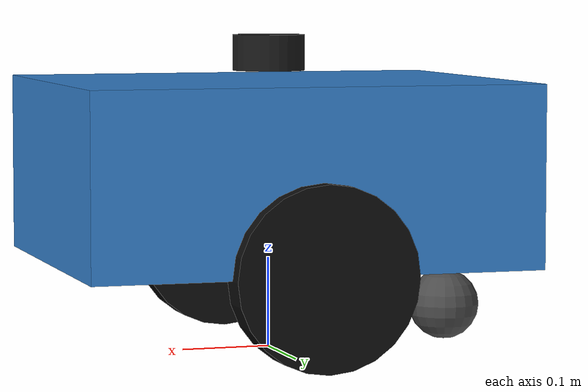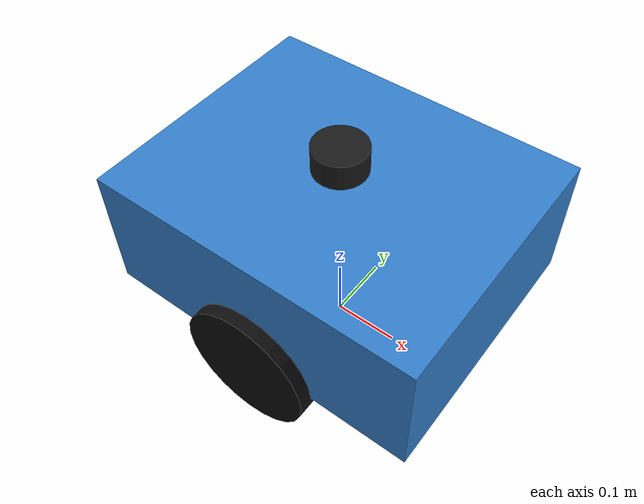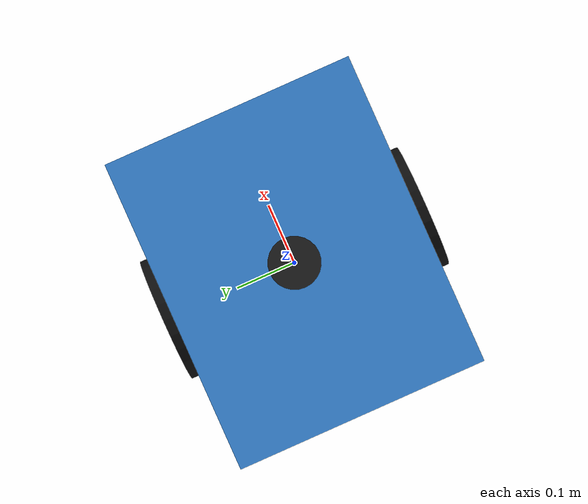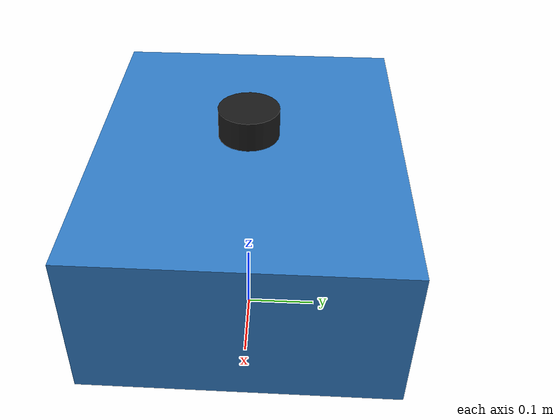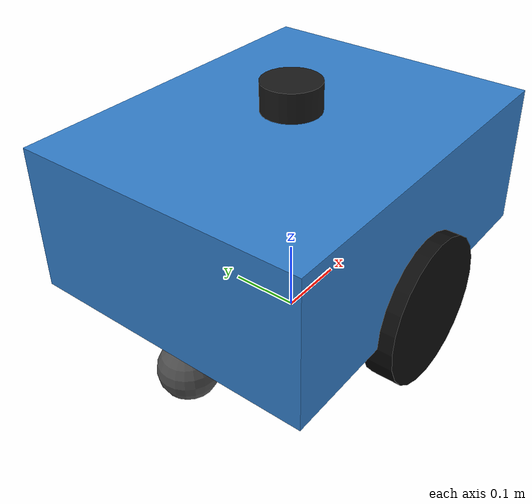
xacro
<?xml version="1.0"?>
<robot name="diff_bot" xmlns:xacro="http://www.ros.org/wiki/xacro">

  <!-- base_footprint at floor level (navigation root). -->
  <link name="base_footprint"/>

  <joint name="base_footprint_to_base_link" type="fixed">
    <parent link="base_footprint"/>
    <child link="base_link"/>
    <origin xyz="0 0 0.200000" rpy="0 0 0"/>
  </joint>

  <link name="base_link">
    <visual>
      <geometry><box size="0.500000 0.400000 0.200000"/></geometry>
      <material name="chassis_color"><color rgba="0.2 0.5 0.8 1"/></material>
    </visual>
    <collision>
      <geometry><box size="0.500000 0.400000 0.200000"/></geometry>
    </collision>
    <inertial>
      <mass value="10.000000"/>
      <inertia ixx="0.166667" iyy="0.241667" izz="0.341667"
               ixy="0" ixz="0" iyz="0"/>
    </inertial>
  </link>

  <!-- Wheels -->
  <link name="left_wheel">
    <visual>
      <geometry><cylinder radius="0.100000" length="0.040000"/></geometry>
      <material name="wheel_color"><color rgba="0.05 0.05 0.05 1"/></material>
      <origin rpy="1.5708 0 0"/>
    </visual>
    <collision>
      <geometry><cylinder radius="0.100000" length="0.040000"/></geometry>
      <origin rpy="1.5708 0 0"/>
    </collision>
    <inertial>
      <mass value="0.314159"/>
      <inertia ixx="0.000827" iyy="0.000827" izz="0.001571"
               ixy="0" ixz="0" iyz="0"/>
    </inertial>
  </link>
  <joint name="left_wheel_joint" type="continuous">
    <parent link="base_link"/>
    <child link="left_wheel"/>
    <origin xyz="0 0.200000 -0.100000" rpy="0 0 0"/>
    <axis xyz="0 1 0"/>
  </joint>

  <link name="right_wheel">
    <visual>
      <geometry><cylinder radius="0.100000" length="0.040000"/></geometry>
      <material name="wheel_color"><color rgba="0.05 0.05 0.05 1"/></material>
      <origin rpy="1.5708 0 0"/>
    </visual>
    <collision>
      <geometry><cylinder radius="0.100000" length="0.040000"/></geometry>
      <origin rpy="1.5708 0 0"/>
    </collision>
    <inertial>
      <mass value="0.314159"/>
      <inertia ixx="0.000827" iyy="0.000827" izz="0.001571"
               ixy="0" ixz="0" iyz="0"/>
    </inertial>
  </link>
  <joint name="right_wheel_joint" type="continuous">
    <parent link="base_link"/>
    <child link="right_wheel"/>
    <origin xyz="0 -0.200000 -0.100000" rpy="0 0 0"/>
    <axis xyz="0 1 0"/>
  </joint>

  <!-- Passive caster at the back -->
  <link name="caster_wheel">
    <visual>
      <geometry><sphere radius="0.040000"/></geometry>
      <material name="caster_color"><color rgba="0.3 0.3 0.3 1"/></material>
    </visual>
    <collision>
      <geometry><sphere radius="0.040000"/></geometry>
    </collision>
    <inertial>
      <mass value="0.067021"/>
      <inertia ixx="0.000043" iyy="0.000043" izz="0.000043"
               ixy="0" ixz="0" iyz="0"/>
    </inertial>
  </link>
  <joint name="caster_joint" type="fixed">
    <parent link="base_link"/>
    <child link="caster_wheel"/>
    <origin xyz="-0.210000 0 -0.160000" rpy="0 0 0"/>
  </joint>

  <!-- Lidar mount -->
  <link name="lidar_link">
    <visual>
      <geometry><cylinder radius="0.04" length="0.04"/></geometry>
      <material name="lidar_color"><color rgba="0.1 0.1 0.1 1"/></material>
    </visual>
    <inertial>
      <mass value="0.05"/>
      <inertia ixx="1e-5" iyy="1e-5" izz="1e-5" ixy="0" ixz="0" iyz="0"/>
    </inertial>
  </link>
  <joint name="lidar_joint" type="fixed">
    <parent link="base_link"/>
    <child link="lidar_link"/>
    <origin xyz="0 0 0.130000" rpy="0 0 0"/>
  </joint>

  <!-- IMU at chassis center -->
  <link name="imu_link">
    <inertial>
      <mass value="0.01"/>
      <inertia ixx="1e-6" iyy="1e-6" izz="1e-6" ixy="0" ixz="0" iyz="0"/>
    </inertial>
  </link>
  <joint name="imu_joint" type="fixed">
    <parent link="base_link"/>
    <child link="imu_link"/>
    <origin xyz="0 0 0" rpy="0 0 0"/>
  </joint>

  <!-- Gazebo materials + plugins -->
  <gazebo reference="base_link"><material>Gazebo/Blue</material></gazebo>
  <gazebo reference="left_wheel"><material>Gazebo/Black</material></gazebo>
  <gazebo reference="right_wheel"><material>Gazebo/Black</material></gazebo>
  <gazebo reference="caster_wheel"><material>Gazebo/Grey</material></gazebo>

  <gazebo>
    <plugin filename="gz-sim-diff-drive-system" name="gz::sim::systems::DiffDrive">
      <left_joint>left_wheel_joint</left_joint>
      <right_joint>right_wheel_joint</right_joint>
      <wheel_separation>0.400000</wheel_separation>
      <wheel_radius>0.100000</wheel_radius>
      <odom_publish_frequency>30</odom_publish_frequency>
      <topic>cmd_vel</topic>
      <odom_topic>odom</odom_topic>
      <tf_topic>tf</tf_topic>
      <frame_id>odom</frame_id>
      <child_frame_id>base_link</child_frame_id>
    </plugin>
    <plugin filename="gz-sim-joint-state-publisher-system" name="gz::sim::systems::JointStatePublisher">
      <topic>joint_states</topic>
    </plugin>
  </gazebo>

  <gazebo reference="lidar_link">
    <sensor name="lidar" type="gpu_lidar">
      <update_rate>10</update_rate>
      <topic>scan</topic>
      <gz_frame_id>lidar_link</gz_frame_id>
      <ignition_frame_id>lidar_link</ignition_frame_id>
      <ray>
        <scan>
          <horizontal>
            <samples>360</samples>
            <resolution>1</resolution>
            <min_angle>-3.14159</min_angle>
            <max_angle>3.14159</max_angle>
          </horizontal>
          <vertical>
            <samples>1</samples>
            <resolution>0.01</resolution>
            <min_angle>0</min_angle>
            <max_angle>0</max_angle>
          </vertical>
        </scan>
        <range>
          <min>0.08</min>
          <max>10.0</max>
          <resolution>0.01</resolution>
        </range>
      </ray>
      <always_on>1</always_on>
      <visualize>true</visualize>
    </sensor>
  </gazebo>

  <gazebo reference="imu_link">
    <sensor name="imu" type="imu">
      <always_on>1</always_on>
      <update_rate>100</update_rate>
      <topic>imu</topic>
      <gz_frame_id>imu_link</gz_frame_id>
      <ignition_frame_id>imu_link</ignition_frame_id>
    </sensor>
  </gazebo>

</robot>
